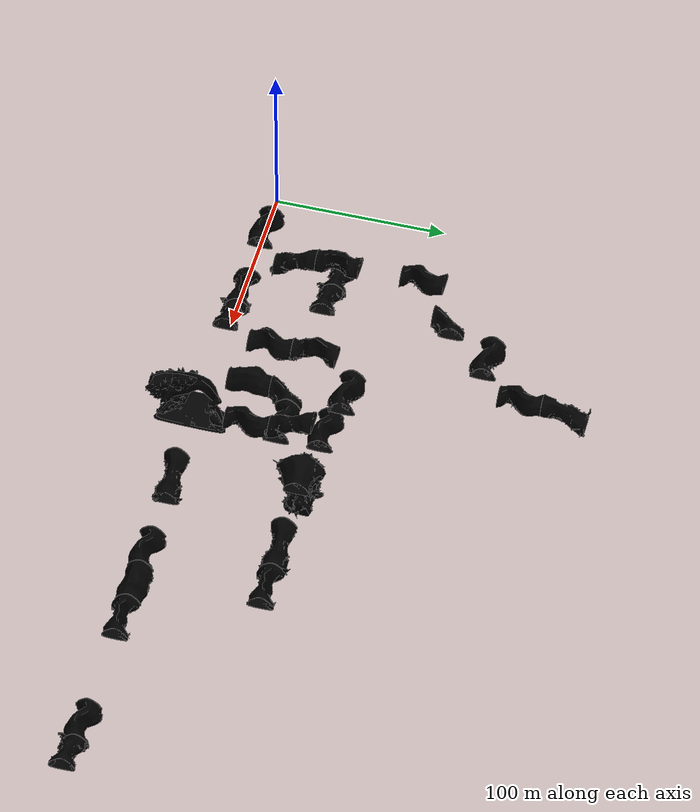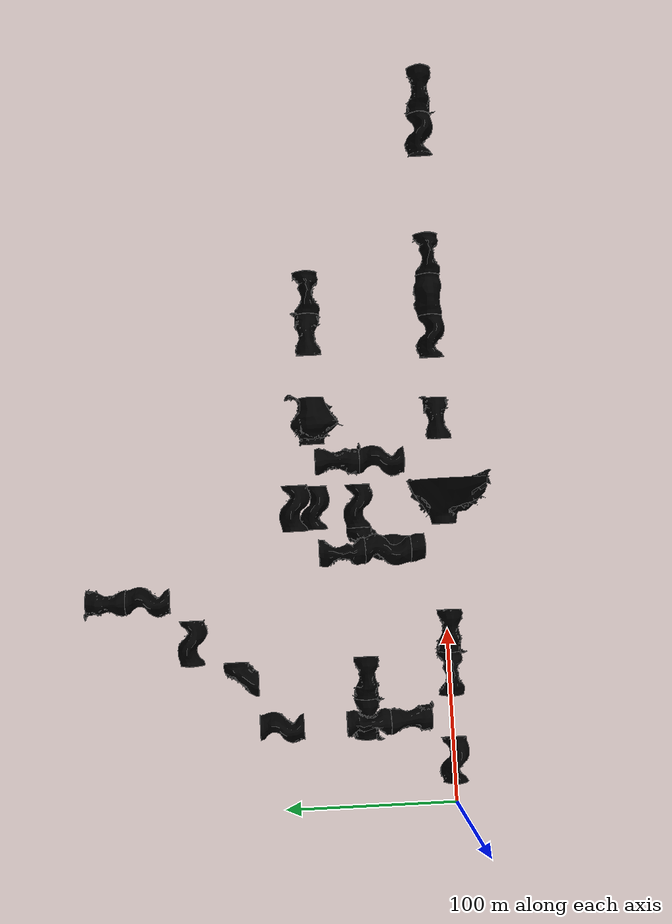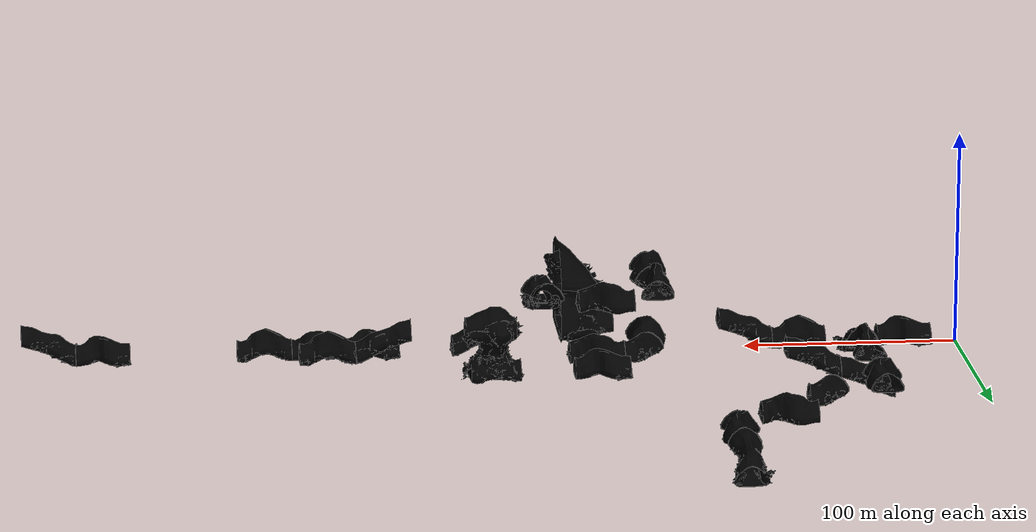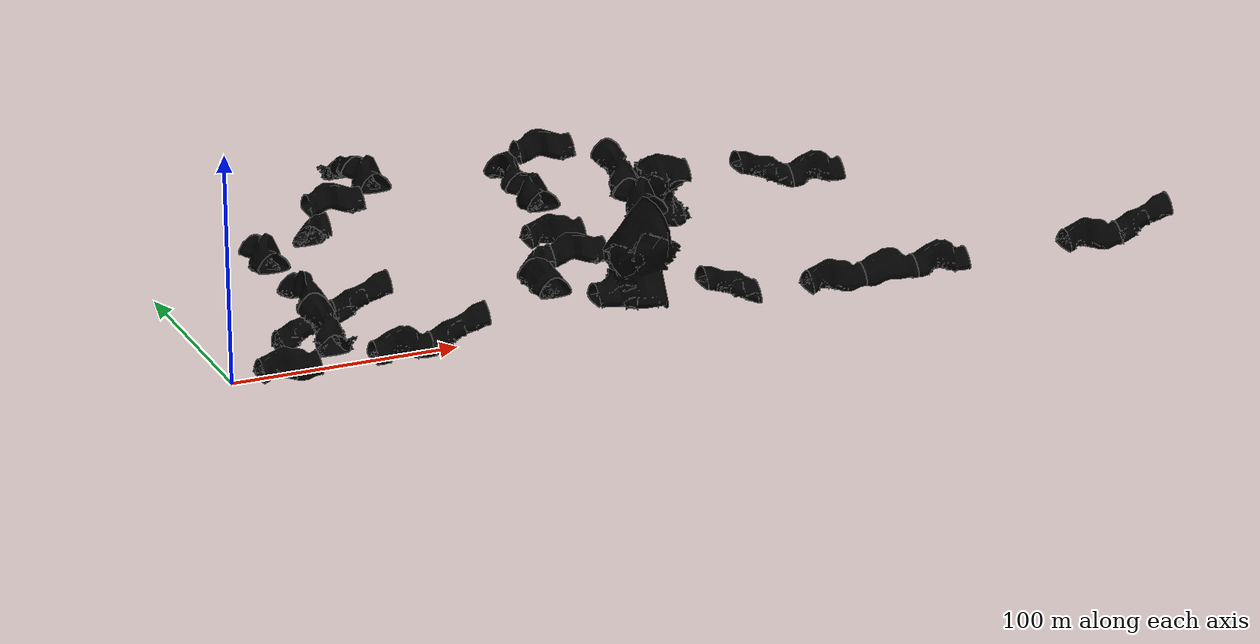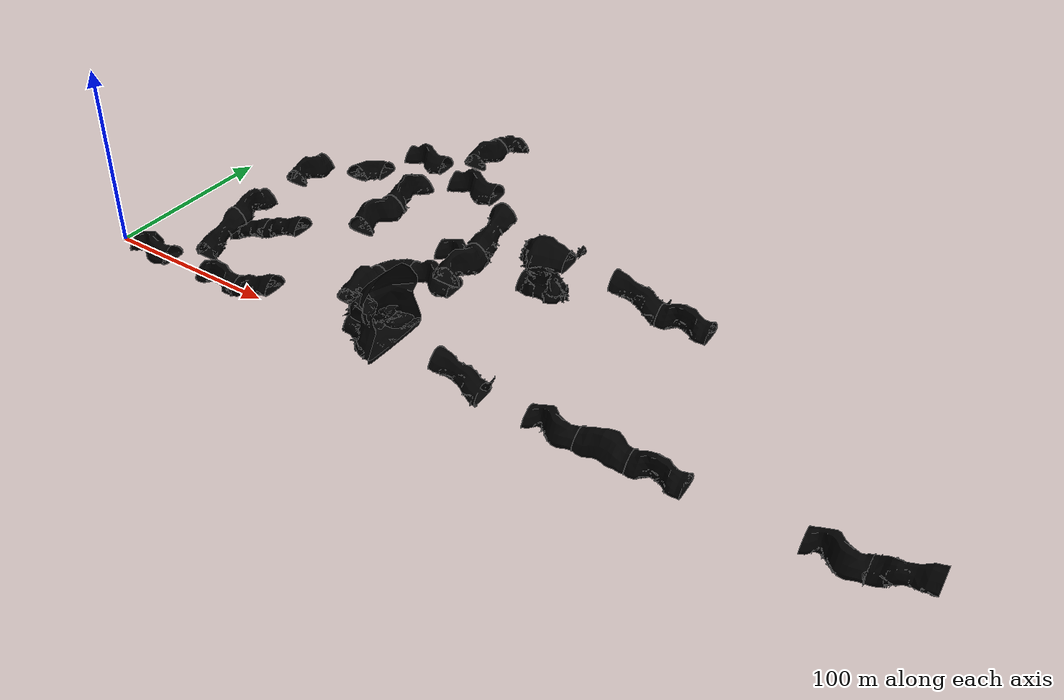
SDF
<sdf version="1.6">
 <world name="cave_circuit_06">
  <physics name="1ms" type="ode">
   <max_step_size>0.004</max_step_size>
   <real_time_factor>1.0</real_time_factor>
  </physics>
  <scene>
   <ambient>0.1 0.1 0.1 1.0</ambient>
   <background>0 0 0 1.0</background>
   <grid>false</grid>
   <origin_visual>false</origin_visual>
  </scene>
  <atmosphere type="adiabatic">
   <temperature>288</temperature>
   <temperature_gradient>0.3</temperature_gradient>
  </atmosphere>
  <model name="performer_detector_rockfall_1">
   <static>true</static>
   <pose>152.895000 42.074100 14.025700 0 0 0</pose>
   <plugin filename="libignition-gazebo-performer-detector-system.so" name="ignition::gazebo::systems::PerformerDetector">
    <topic>/subt_performer_detector</topic>
    <geometry><box><size>25 16 15</size></box></geometry>
   </plugin>
   <plugin name="ignition::gazebo::systems::TriggeredPublisher" filename="libignition-gazebo-triggered-publisher-system.so">
    <input type="ignition.msgs.Pose" topic="/subt_performer_detector">
     <match field="header.data">{
            key: "frame_id"
            value: "performer_detector_rockfall_1"
            }</match>
     <match field="header.data">{
            key: "state"
            value: "0"
            }</match>
    </input>
    <output type="ignition.msgs.Empty" topic="/model/dynamic_rocks_1/breadcrumbs/Rock/deploy"/>
   </plugin>
  </model>
  <model name="performer_detector_rockfall_2">
   <static>true</static>
   <pose>123.259000 119.252000 18.634200 0 0 0</pose>
   <plugin filename="libignition-gazebo-performer-detector-system.so" name="ignition::gazebo::systems::PerformerDetector">
    <topic>/subt_performer_detector</topic>
    <geometry><box><size>16 25 15</size></box></geometry>
   </plugin>
   <plugin name="ignition::gazebo::systems::TriggeredPublisher" filename="libignition-gazebo-triggered-publisher-system.so">
    <input type="ignition.msgs.Pose" topic="/subt_performer_detector">
     <match field="header.data">{
            key: "frame_id"
            value: "performer_detector_rockfall_2"
            }</match>
     <match field="header.data">{
            key: "state"
            value: "1"
            }</match>
    </input>
    <output type="ignition.msgs.Empty" topic="/model/dynamic_rocks_2/breadcrumbs/Rock/deploy"/>
   </plugin>
  </model>
  <model name="performer_detector_rockfall_3">
   <static>true</static>
   <pose>232.034000 -0.300330 9.838950 0 0 0</pose>
   <plugin filename="libignition-gazebo-performer-detector-system.so" name="ignition::gazebo::systems::PerformerDetector">
    <topic>/subt_performer_detector</topic>
    <geometry><box><size>10 25 15</size></box></geometry>
   </plugin>
   <plugin name="ignition::gazebo::systems::TriggeredPublisher" filename="libignition-gazebo-triggered-publisher-system.so">
    <input type="ignition.msgs.Pose" topic="/subt_performer_detector">
     <match field="header.data">{
            key: "frame_id"
            value: "performer_detector_rockfall_3"
            }</match>
     <match field="header.data">{
            key: "state"
            value: "1"
            }</match>
    </input>
    <output type="ignition.msgs.Empty" topic="/model/dynamic_rocks_3/breadcrumbs/Rock/deploy"/>
   </plugin>
  </model>
  <include>
   <uri>https://fuel.ignitionrobotics.org/1.0/OpenRobotics/models/Cave Straight 03 Type B</uri>
   <name>tile_1</name>
   <pose>25 0 0 0 0 -1.5708</pose>
  </include>
  <include>
   <uri>https://fuel.ignitionrobotics.org/1.0/OpenRobotics/models/Cave Straight 02 Lights Type B</uri>
   <name>tile_3</name>
   <pose>75 0 0 0 0 -1.5708</pose>
  </include>
  <include>
   <uri>https://fuel.ignitionrobotics.org/1.0/OpenRobotics/models/Cave Elevation Lights Type B</uri>
   <name>tile_4</name>
   <pose>50 25 0 0 -0 3.14159</pose>
  </include>
  <include>
   <uri>https://fuel.ignitionrobotics.org/1.0/OpenRobotics/models/Cave Elevation Lights Type B</uri>
   <name>tile_5</name>
   <pose>100 0 0 0 -0 1.5708</pose>
  </include>
  <include>
   <uri>https://fuel.ignitionrobotics.org/1.0/OpenRobotics/models/Cave Straight 02 Type B</uri>
   <name>tile_6</name>
   <pose>50 50 10 0 -0 0</pose>
  </include>
  <include>
   <uri>https://fuel.ignitionrobotics.org/1.0/OpenRobotics/models/Cave Straight 03 Type B</uri>
   <name>tile_11</name>
   <pose>50 100 10 0 -0 0</pose>
  </include>
  <include>
   <uri>https://fuel.ignitionrobotics.org/1.0/OpenRobotics/models/Cave Cavern Split 02 Type B</uri>
   <name>tile_12</name>
   <pose>175 0 10 0 -0 0</pose>
  </include>
  <include>
   <uri>https://fuel.ignitionrobotics.org/1.0/OpenRobotics/models/Cave Corner 02 Type B</uri>
   <name>tile_14</name>
   <pose>150 50 10 0 -0 3.14159</pose>
  </include>
  <include>
   <uri>https://fuel.ignitionrobotics.org/1.0/OpenRobotics/models/Cave Elevation Type B</uri>
   <name>tile_17</name>
   <pose>225 0 0 0 0 -1.5708</pose>
  </include>
  <include>
   <uri>https://fuel.ignitionrobotics.org/1.0/OpenRobotics/models/Cave Straight 03 Type B</uri>
   <name>tile_18</name>
   <pose>200 37.5 35 0 -0 0</pose>
  </include>
  <include>
   <uri>https://fuel.ignitionrobotics.org/1.0/OpenRobotics/models/Cave Elevation Type B</uri>
   <name>tile_23</name>
   <pose>200 62.5 35 0 -0 3.14159</pose>
  </include>
  <include>
   <uri>https://fuel.ignitionrobotics.org/1.0/OpenRobotics/models/Cave Elevation Type B</uri>
   <name>tile_26</name>
   <pose>75 50 0 0 -0 1.5708</pose>
  </include>
  <include>
   <uri>https://fuel.ignitionrobotics.org/1.0/OpenRobotics/models/Cave Straight 03 Type B</uri>
   <name>tile_28</name>
   <pose>275 0 0 0 0 -1.5708</pose>
  </include>
  <include>
   <uri>https://fuel.ignitionrobotics.org/1.0/OpenRobotics/models/Cave Straight 03 Type B</uri>
   <name>tile_32</name>
   <pose>175 75 10 0 0 -1.5708</pose>
  </include>
  <include>
   <uri>https://fuel.ignitionrobotics.org/1.0/OpenRobotics/models/Cave Elevation Type B</uri>
   <name>tile_33</name>
   <pose>50 50 -10 0 -0 1.5708</pose>
  </include>
  <include>
   <uri>https://fuel.ignitionrobotics.org/1.0/OpenRobotics/models/Cave Straight 04 Lights Type B</uri>
   <name>tile_35</name>
   <pose>300 0 0 0 0 -1.5708</pose>
  </include>
  <include>
   <uri>https://fuel.ignitionrobotics.org/1.0/OpenRobotics/models/Cave Straight 03 Type B</uri>
   <name>tile_37</name>
   <pose>175 87.5 45 0 -0 1.5708</pose>
  </include>
  <include>
   <uri>https://fuel.ignitionrobotics.org/1.0/OpenRobotics/models/Cave Straight 02 Type B</uri>
   <name>tile_42</name>
   <pose>325 0 0 0 0 -1.5708</pose>
  </include>
  <include>
   <uri>https://fuel.ignitionrobotics.org/1.0/OpenRobotics/models/Cave Straight 03 Type B</uri>
   <name>tile_45</name>
   <pose>125 175 10 0 -0 0</pose>
  </include>
  <include>
   <uri>https://fuel.ignitionrobotics.org/1.0/OpenRobotics/models/Cave Straight 03 Type B</uri>
   <name>tile_46</name>
   <pose>100 150 10 0 -0 1.5708</pose>
  </include>
  <include>
   <uri>https://fuel.ignitionrobotics.org/1.0/OpenRobotics/models/Cave Corner 02 Lights Type B</uri>
   <name>tile_47</name>
   <pose>75 125 10 0 -0 3.14159</pose>
  </include>
  <include>
   <uri>https://fuel.ignitionrobotics.org/1.0/OpenRobotics/models/Cave Vertical Shaft Type B</uri>
   <name>tile_48</name>
   <pose>225 75 10 0 0 -1.5708</pose>
  </include>
  <include>
   <uri>https://fuel.ignitionrobotics.org/1.0/OpenRobotics/models/Cave Straight 02 Type B</uri>
   <name>tile_56</name>
   <pose>150 62.5 45 0 -0 3.14159</pose>
  </include>
  <include>
   <uri>https://fuel.ignitionrobotics.org/1.0/OpenRobotics/models/Cave Elevation Type B</uri>
   <name>tile_57</name>
   <pose>125 200 0 0 -0 0</pose>
  </include>
  <include>
   <uri>https://fuel.ignitionrobotics.org/1.0/OpenRobotics/models/Cave Straight 03 Type B</uri>
   <name>tile_61</name>
   <pose>175 50 10 0 -0 1.5708</pose>
  </include>
  <include>
   <uri>https://fuel.ignitionrobotics.org/1.0/OpenRobotics/models/Cave Straight 03 Type B</uri>
   <name>tile_69</name>
   <pose>150 37.5 45 0 -0 3.14159</pose>
  </include>
  <include>
   <uri>https://fuel.ignitionrobotics.org/1.0/OpenRobotics/models/Cave Elevation Lights Type B</uri>
   <name>tile_72</name>
   <pose>275 75 20 0 0 -1.5708</pose>
  </include>
  <include>
   <uri>https://fuel.ignitionrobotics.org/1.0/OpenRobotics/models/Cave Straight 04 Type B</uri>
   <name>tile_73</name>
   <pose>150 25 10 0 -0 0</pose>
  </include>
  <include>
   <uri>https://fuel.ignitionrobotics.org/1.0/OpenRobotics/models/Cave Straight 03 Type B</uri>
   <name>tile_77</name>
   <pose>400 0 0 0 0 -1.5708</pose>
  </include>
  <include>
   <uri>https://fuel.ignitionrobotics.org/1.0/OpenRobotics/models/Cave Straight 02 Lights Type B</uri>
   <name>tile_85</name>
   <pose>300 75 20 0 0 -1.5708</pose>
  </include>
  <include>
   <uri>https://fuel.ignitionrobotics.org/1.0/OpenRobotics/models/Cave Elevation Type B</uri>
   <name>tile_89</name>
   <pose>425 0 0 0 -0 1.5708</pose>
  </include>
  <plugin name="ignition::gazebo" filename="dummy">
   <level name="level0">
    <ref>tile_1</ref>
    <ref>cave_cap_01</ref>
    <pose>25 105.014 18.6428 0 0 0</pose>
    <geometry><box><size>93.75 339.973 157.286</size></box></geometry>
    <buffer>10</buffer>
   </level>
   <level name="level1">
    <ref>rescue_randy_1</ref>
    <pose>35.5225 105.014 18.6428 0 0 0</pose>
    <geometry><box><size>93.75 339.973 157.286</size></box></geometry>
    <buffer>10</buffer>
   </level>
   <level name="level2">
    <ref>tile_2</ref>
    <ref>tile_4</ref>
    <ref>tile_6</ref>
    <ref>tile_8</ref>
    <ref>tile_11</ref>
    <ref>tile_33</ref>
    <ref>cave_cap_05</ref>
    <pose>50 105.014 18.6428 0 0 0</pose>
    <geometry><box><size>93.75 339.973 157.286</size></box></geometry>
    <buffer>10</buffer>
   </level>
   <level name="level3">
    <ref>helmet_1</ref>
    <pose>50.9806 105.014 18.6428 0 0 0</pose>
    <geometry><box><size>93.75 339.973 157.286</size></box></geometry>
    <buffer>10</buffer>
   </level>
   <level name="level4">
    <ref>phone_1</ref>
    <pose>56.3242 105.014 18.6428 0 0 0</pose>
    <geometry><box><size>93.75 339.973 157.286</size></box></geometry>
    <buffer>10</buffer>
   </level>
   <level name="level5">
    <ref>rope_2</ref>
    <pose>74.5161 105.014 18.6428 0 0 0</pose>
    <geometry><box><size>93.75 339.973 157.286</size></box></geometry>
    <buffer>10</buffer>
   </level>
   <level name="level6">
    <ref>tile_3</ref>
    <ref>tile_26</ref>
    <ref>tile_47</ref>
    <ref>cave_cap_08</ref>
    <ref>cave_cap_09</ref>
    <pose>75 105.014 18.6428 0 0 0</pose>
    <geometry><box><size>93.75 339.973 157.286</size></box></geometry>
    <buffer>10</buffer>
   </level>
   <level name="level7">
    <ref>backpack_4</ref>
    <pose>94.0601 105.014 18.6428 0 0 0</pose>
    <geometry><box><size>93.75 339.973 157.286</size></box></geometry>
    <buffer>10</buffer>
   </level>
   <level name="level8">
    <ref>tile_5</ref>
    <ref>tile_20</ref>
    <ref>tile_31</ref>
    <ref>tile_39</ref>
    <ref>tile_46</ref>
    <ref>cave_cap_02</ref>
    <ref>cave_cap_12</ref>
    <pose>100 105.014 18.6428 0 0 0</pose>
    <geometry><box><size>93.75 339.973 157.286</size></box></geometry>
    <buffer>10</buffer>
   </level>
   <level name="level9">
    <ref>backpack_5</ref>
    <pose>121.832 105.014 18.6428 0 0 0</pose>
    <geometry><box><size>93.75 339.973 157.286</size></box></geometry>
    <buffer>10</buffer>
   </level>
   <level name="level10">
    <ref>tile_7</ref>
    <ref>tile_10</ref>
    <ref>tile_15</ref>
    <ref>tile_19</ref>
    <ref>tile_24</ref>
    <ref>tile_30</ref>
    <ref>tile_38</ref>
    <ref>tile_45</ref>
    <ref>tile_55</ref>
    <ref>tile_57</ref>
    <ref>cave_cap_10</ref>
    <pose>125 105.014 18.6428 0 0 0</pose>
    <geometry><box><size>93.75 339.973 157.286</size></box></geometry>
    <buffer>10</buffer>
   </level>
   <level name="level11">
    <ref>helmet_3</ref>
    <pose>130.208 105.014 18.6428 0 0 0</pose>
    <geometry><box><size>93.75 339.973 157.286</size></box></geometry>
    <buffer>10</buffer>
   </level>
   <level name="level12">
    <ref>helmet_2</ref>
    <pose>133.322 105.014 18.6428 0 0 0</pose>
    <geometry><box><size>93.75 339.973 157.286</size></box></geometry>
    <buffer>10</buffer>
   </level>
   <level name="level13">
    <ref>backpack_2</ref>
    <pose>142.433 105.014 18.6428 0 0 0</pose>
    <geometry><box><size>93.75 339.973 157.286</size></box></geometry>
    <buffer>10</buffer>
   </level>
   <level name="level14">
    <ref>tile_9</ref>
    <ref>tile_14</ref>
    <ref>tile_25</ref>
    <ref>tile_44</ref>
    <ref>tile_56</ref>
    <ref>tile_69</ref>
    <ref>tile_73</ref>
    <ref>tile_81</ref>
    <ref>cave_cap_04</ref>
    <pose>150 105.014 18.6428 0 0 0</pose>
    <geometry><box><size>93.75 339.973 157.286</size></box></geometry>
    <buffer>10</buffer>
   </level>
   <level name="level15">
    <ref>phone_2</ref>
    <pose>165.16 105.014 18.6428 0 0 0</pose>
    <geometry><box><size>93.75 339.973 157.286</size></box></geometry>
    <buffer>10</buffer>
   </level>
   <level name="level16">
    <ref>tile_12</ref>
    <ref>tile_32</ref>
    <ref>tile_37</ref>
    <ref>tile_61</ref>
    <ref>tile_101</ref>
    <pose>175 105.014 18.6428 0 0 0</pose>
    <geometry><box><size>93.75 339.973 157.286</size></box></geometry>
    <buffer>10</buffer>
   </level>
   <level name="level17">
    <ref>backpack_3</ref>
    <pose>175.821 105.014 18.6428 0 0 0</pose>
    <geometry><box><size>93.75 339.973 157.286</size></box></geometry>
    <buffer>10</buffer>
   </level>
   <level name="level18">
    <ref>helmet_4</ref>
    <pose>185.56 105.014 18.6428 0 0 0</pose>
    <geometry><box><size>93.75 339.973 157.286</size></box></geometry>
    <buffer>10</buffer>
   </level>
   <level name="level19">
    <ref>rope_1</ref>
    <pose>192.126 105.014 18.6428 0 0 0</pose>
    <geometry><box><size>93.75 339.973 157.286</size></box></geometry>
    <buffer>10</buffer>
   </level>
   <level name="level20">
    <ref>helmet_5</ref>
    <pose>197.018 105.014 18.6428 0 0 0</pose>
    <geometry><box><size>93.75 339.973 157.286</size></box></geometry>
    <buffer>10</buffer>
   </level>
   <level name="level21">
    <ref>tile_13</ref>
    <ref>tile_18</ref>
    <ref>tile_23</ref>
    <ref>tile_29</ref>
    <ref>tile_36</ref>
    <ref>tile_40</ref>
    <ref>tile_43</ref>
    <ref>tile_49</ref>
    <ref>cave_cap_03</ref>
    <ref>cave_cap_11</ref>
    <pose>200 105.014 18.6428 0 0 0</pose>
    <geometry><box><size>93.75 339.973 157.286</size></box></geometry>
    <buffer>10</buffer>
   </level>
   <level name="level22">
    <ref>rescue_randy_4</ref>
    <pose>200.931 105.014 18.6428 0 0 0</pose>
    <geometry><box><size>93.75 339.973 157.286</size></box></geometry>
    <buffer>10</buffer>
   </level>
   <level name="level23">
    <ref>rope_3</ref>
    <pose>221.841 105.014 18.6428 0 0 0</pose>
    <geometry><box><size>93.75 339.973 157.286</size></box></geometry>
    <buffer>10</buffer>
   </level>
   <level name="level24">
    <ref>tile_17</ref>
    <ref>tile_48</ref>
    <pose>225 105.014 18.6428 0 0 0</pose>
    <geometry><box><size>93.75 339.973 157.286</size></box></geometry>
    <buffer>10</buffer>
   </level>
   <level name="level25">
    <ref>tile_22</ref>
    <ref>tile_60</ref>
    <pose>250 105.014 18.6428 0 0 0</pose>
    <geometry><box><size>93.75 339.973 157.286</size></box></geometry>
    <buffer>10</buffer>
   </level>
   <level name="level26">
    <ref>rescue_randy_3</ref>
    <pose>264.364 105.014 18.6428 0 0 0</pose>
    <geometry><box><size>93.75 339.973 157.286</size></box></geometry>
    <buffer>10</buffer>
   </level>
   <level name="level27">
    <ref>tile_28</ref>
    <ref>tile_72</ref>
    <pose>275 105.014 18.6428 0 0 0</pose>
    <geometry><box><size>93.75 339.973 157.286</size></box></geometry>
    <buffer>10</buffer>
   </level>
   <level name="level28">
    <ref>tile_35</ref>
    <ref>tile_85</ref>
    <pose>300 105.014 18.6428 0 0 0</pose>
    <geometry><box><size>93.75 339.973 157.286</size></box></geometry>
    <buffer>10</buffer>
   </level>
   <level name="level29">
    <ref>rescue_randy_2</ref>
    <pose>312.444 105.014 18.6428 0 0 0</pose>
    <geometry><box><size>93.75 339.973 157.286</size></box></geometry>
    <buffer>10</buffer>
   </level>
   <level name="level30">
    <ref>tile_42</ref>
    <ref>cave_cap_06</ref>
    <pose>325 105.014 18.6428 0 0 0</pose>
    <geometry><box><size>93.75 339.973 157.286</size></box></geometry>
    <buffer>10</buffer>
   </level>
   <level name="level31">
    <ref>tile_52</ref>
    <pose>350 105.014 18.6428 0 0 0</pose>
    <geometry><box><size>93.75 339.973 157.286</size></box></geometry>
    <buffer>10</buffer>
   </level>
   <level name="level32">
    <ref>phone_3</ref>
    <pose>374.93 105.014 18.6428 0 0 0</pose>
    <geometry><box><size>93.75 339.973 157.286</size></box></geometry>
    <buffer>10</buffer>
   </level>
   <level name="level33">
    <ref>tile_65</ref>
    <pose>375 105.014 18.6428 0 0 0</pose>
    <geometry><box><size>93.75 339.973 157.286</size></box></geometry>
    <buffer>10</buffer>
   </level>
   <level name="level34">
    <ref>tile_77</ref>
    <pose>400 105.014 18.6428 0 0 0</pose>
    <geometry><box><size>93.75 339.973 157.286</size></box></geometry>
    <buffer>10</buffer>
   </level>
   <level name="level35">
    <ref>tile_89</ref>
    <pose>425 105.014 18.6428 0 0 0</pose>
    <geometry><box><size>93.75 339.973 157.286</size></box></geometry>
    <buffer>10</buffer>
   </level>
   <level name="level36">
    <ref>backpack_1</ref>
    <pose>438.41 105.014 18.6428 0 0 0</pose>
    <geometry><box><size>93.75 339.973 157.286</size></box></geometry>
    <buffer>10</buffer>
   </level>
   <level name="level37">
    <ref>cave_cap_07</ref>
    <pose>450 105.014 18.6428 0 0 0</pose>
    <geometry><box><size>93.75 339.973 157.286</size></box></geometry>
    <buffer>10</buffer>
   </level>
   <level name="level38">
    <ref>rope_1</ref>
    <pose>237.5 -14.9729 18.6428 0 0 0</pose>
    <geometry><box><size>525 93.75 157.286</size></box></geometry>
    <buffer>10</buffer>
   </level>
   <level name="level39">
    <ref>cave_cap_04</ref>
    <pose>237.5 -12.5 18.6428 0 0 0</pose>
    <geometry><box><size>525 93.75 157.286</size></box></geometry>
    <buffer>10</buffer>
   </level>
   <level name="level40">
    <ref>phone_3</ref>
    <pose>237.5 -7.54941 18.6428 0 0 0</pose>
    <geometry><box><size>525 93.75 157.286</size></box></geometry>
    <buffer>10</buffer>
   </level>
   <level name="level41">
    <ref>rescue_randy_3</ref>
    <pose>237.5 -3.45589 18.6428 0 0 0</pose>
    <geometry><box><size>525 93.75 157.286</size></box></geometry>
    <buffer>10</buffer>
   </level>
   <level name="level42">
    <ref>helmet_1</ref>
    <pose>237.5 -2.7897 18.6428 0 0 0</pose>
    <geometry><box><size>525 93.75 157.286</size></box></geometry>
    <buffer>10</buffer>
   </level>
   <level name="level43">
    <ref>tile_1</ref>
    <ref>tile_2</ref>
    <ref>tile_3</ref>
    <ref>tile_5</ref>
    <ref>tile_7</ref>
    <ref>tile_9</ref>
    <ref>tile_12</ref>
    <ref>tile_13</ref>
    <ref>tile_17</ref>
    <ref>tile_22</ref>
    <ref>tile_28</ref>
    <ref>tile_35</ref>
    <ref>tile_42</ref>
    <ref>tile_52</ref>
    <ref>tile_65</ref>
    <ref>tile_77</ref>
    <ref>tile_89</ref>
    <ref>cave_cap_07</ref>
    <pose>237.5 0 18.6428 0 0 0</pose>
    <geometry><box><size>525 93.75 157.286</size></box></geometry>
    <buffer>10</buffer>
   </level>
   <level name="level44">
    <ref>backpack_1</ref>
    <pose>237.5 0.767153 18.6428 0 0 0</pose>
    <geometry><box><size>525 93.75 157.286</size></box></geometry>
    <buffer>10</buffer>
   </level>
   <level name="level45">
    <ref>tile_81</ref>
    <pose>237.5 12.5 18.6428 0 0 0</pose>
    <geometry><box><size>525 93.75 157.286</size></box></geometry>
    <buffer>10</buffer>
   </level>
   <level name="level46">
    <ref>backpack_2</ref>
    <pose>237.5 12.9861 18.6428 0 0 0</pose>
    <geometry><box><size>525 93.75 157.286</size></box></geometry>
    <buffer>10</buffer>
   </level>
   <level name="level47">
    <ref>helmet_4</ref>
    <pose>237.5 13.4616 18.6428 0 0 0</pose>
    <geometry><box><size>525 93.75 157.286</size></box></geometry>
    <buffer>10</buffer>
   </level>
   <level name="level48">
    <ref>rescue_randy_4</ref>
    <pose>237.5 17.924 18.6428 0 0 0</pose>
    <geometry><box><size>525 93.75 157.286</size></box></geometry>
    <buffer>10</buffer>
   </level>
   <level name="level49">
    <ref>tile_4</ref>
    <ref>tile_10</ref>
    <ref>tile_73</ref>
    <ref>tile_101</ref>
    <ref>cave_cap_03</ref>
    <pose>237.5 25 18.6428 0 0 0</pose>
    <geometry><box><size>525 93.75 157.286</size></box></geometry>
    <buffer>10</buffer>
   </level>
   <level name="level50">
    <ref>tile_18</ref>
    <ref>tile_69</ref>
    <pose>237.5 37.5 18.6428 0 0 0</pose>
    <geometry><box><size>525 93.75 157.286</size></box></geometry>
    <buffer>10</buffer>
   </level>
   <level name="level51">
    <ref>rescue_randy_1</ref>
    <pose>237.5 49.4132 18.6428 0 0 0</pose>
    <geometry><box><size>525 93.75 157.286</size></box></geometry>
    <buffer>10</buffer>
   </level>
   <level name="level52">
    <ref>tile_6</ref>
    <ref>tile_14</ref>
    <ref>tile_15</ref>
    <ref>tile_20</ref>
    <ref>tile_26</ref>
    <ref>tile_33</ref>
    <ref>tile_49</ref>
    <ref>tile_61</ref>
    <ref>cave_cap_01</ref>
    <pose>237.5 50 18.6428 0 0 0</pose>
    <geometry><box><size>525 93.75 157.286</size></box></geometry>
    <buffer>10</buffer>
   </level>
   <level name="level53">
    <ref>phone_2</ref>
    <pose>237.5 52.6357 18.6428 0 0 0</pose>
    <geometry><box><size>525 93.75 157.286</size></box></geometry>
    <buffer>10</buffer>
   </level>
   <level name="level54">
    <ref>tile_23</ref>
    <ref>tile_56</ref>
    <pose>237.5 62.5 18.6428 0 0 0</pose>
    <geometry><box><size>525 93.75 157.286</size></box></geometry>
    <buffer>10</buffer>
   </level>
   <level name="level55">
    <ref>helmet_3</ref>
    <pose>237.5 66.6741 18.6428 0 0 0</pose>
    <geometry><box><size>525 93.75 157.286</size></box></geometry>
    <buffer>10</buffer>
   </level>
   <level name="level56">
    <ref>backpack_3</ref>
    <pose>237.5 69.0323 18.6428 0 0 0</pose>
    <geometry><box><size>525 93.75 157.286</size></box></geometry>
    <buffer>10</buffer>
   </level>
   <level name="level57">
    <ref>tile_8</ref>
    <ref>tile_19</ref>
    <ref>tile_25</ref>
    <ref>tile_32</ref>
    <ref>tile_40</ref>
    <ref>tile_48</ref>
    <ref>tile_60</ref>
    <ref>tile_72</ref>
    <ref>tile_85</ref>
    <ref>cave_cap_06</ref>
    <pose>237.5 75 18.6428 0 0 0</pose>
    <geometry><box><size>525 93.75 157.286</size></box></geometry>
    <buffer>10</buffer>
   </level>
   <level name="level58">
    <ref>rope_3</ref>
    <pose>237.5 76.8336 18.6428 0 0 0</pose>
    <geometry><box><size>525 93.75 157.286</size></box></geometry>
    <buffer>10</buffer>
   </level>
   <level name="level59">
    <ref>rescue_randy_2</ref>
    <pose>237.5 77.8378 18.6428 0 0 0</pose>
    <geometry><box><size>525 93.75 157.286</size></box></geometry>
    <buffer>10</buffer>
   </level>
   <level name="level60">
    <ref>tile_29</ref>
    <ref>tile_37</ref>
    <ref>tile_44</ref>
    <ref>tile_55</ref>
    <ref>cave_cap_12</ref>
    <pose>237.5 87.5 18.6428 0 0 0</pose>
    <geometry><box><size>525 93.75 157.286</size></box></geometry>
    <buffer>10</buffer>
   </level>
   <level name="level61">
    <ref>tile_11</ref>
    <ref>tile_24</ref>
    <ref>tile_31</ref>
    <ref>cave_cap_08</ref>
    <pose>237.5 100 18.6428 0 0 0</pose>
    <geometry><box><size>525 93.75 157.286</size></box></geometry>
    <buffer>10</buffer>
   </level>
   <level name="level62">
    <ref>phone_1</ref>
    <pose>237.5 101.075 18.6428 0 0 0</pose>
    <geometry><box><size>525 93.75 157.286</size></box></geometry>
    <buffer>10</buffer>
   </level>
   <level name="level63">
    <ref>backpack_4</ref>
    <pose>237.5 103.616 18.6428 0 0 0</pose>
    <geometry><box><size>525 93.75 157.286</size></box></geometry>
    <buffer>10</buffer>
   </level>
   <level name="level64">
    <ref>tile_36</ref>
    <pose>237.5 112.5 18.6428 0 0 0</pose>
    <geometry><box><size>525 93.75 157.286</size></box></geometry>
    <buffer>10</buffer>
   </level>
   <level name="level65">
    <ref>helmet_5</ref>
    <pose>237.5 115.371 18.6428 0 0 0</pose>
    <geometry><box><size>525 93.75 157.286</size></box></geometry>
    <buffer>10</buffer>
   </level>
   <level name="level66">
    <ref>rope_2</ref>
    <pose>237.5 116.02 18.6428 0 0 0</pose>
    <geometry><box><size>525 93.75 157.286</size></box></geometry>
    <buffer>10</buffer>
   </level>
   <level name="level67">
    <ref>helmet_2</ref>
    <pose>237.5 124.379 18.6428 0 0 0</pose>
    <geometry><box><size>525 93.75 157.286</size></box></geometry>
    <buffer>10</buffer>
   </level>
   <level name="level68">
    <ref>tile_30</ref>
    <ref>tile_39</ref>
    <ref>tile_47</ref>
    <ref>cave_cap_05</ref>
    <pose>237.5 125 18.6428 0 0 0</pose>
    <geometry><box><size>525 93.75 157.286</size></box></geometry>
    <buffer>10</buffer>
   </level>
   <level name="level69">
    <ref>tile_43</ref>
    <pose>237.5 137.5 18.6428 0 0 0</pose>
    <geometry><box><size>525 93.75 157.286</size></box></geometry>
    <buffer>10</buffer>
   </level>
   <level name="level70">
    <ref>tile_38</ref>
    <ref>tile_46</ref>
    <ref>cave_cap_02</ref>
    <ref>cave_cap_09</ref>
    <pose>237.5 150 18.6428 0 0 0</pose>
    <geometry><box><size>525 93.75 157.286</size></box></geometry>
    <buffer>10</buffer>
   </level>
   <level name="level71">
    <ref>cave_cap_11</ref>
    <pose>237.5 162.5 18.6428 0 0 0</pose>
    <geometry><box><size>525 93.75 157.286</size></box></geometry>
    <buffer>10</buffer>
   </level>
   <level name="level72">
    <ref>tile_45</ref>
    <pose>237.5 175 18.6428 0 0 0</pose>
    <geometry><box><size>525 93.75 157.286</size></box></geometry>
    <buffer>10</buffer>
   </level>
   <level name="level73">
    <ref>tile_57</ref>
    <pose>237.5 200 18.6428 0 0 0</pose>
    <geometry><box><size>525 93.75 157.286</size></box></geometry>
    <buffer>10</buffer>
   </level>
   <level name="level74">
    <ref>backpack_5</ref>
    <pose>237.5 214.72 18.6428 0 0 0</pose>
    <geometry><box><size>525 93.75 157.286</size></box></geometry>
    <buffer>10</buffer>
   </level>
   <level name="level75">
    <ref>cave_cap_10</ref>
    <pose>237.5 225 18.6428 0 0 0</pose>
    <geometry><box><size>525 93.75 157.286</size></box></geometry>
    <buffer>10</buffer>
   </level>
  </plugin>
 </world>
</sdf>

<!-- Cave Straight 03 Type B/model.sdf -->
<sdf version="1.6">
  <model name="Cave Straight 03 Type B">
    <static>true</static>
    <link name="base_link">
      <collision name="collision">
        <pose>0 0 0 0 0 0</pose>
        <geometry>
          <mesh>
            <uri>model://Cave Straight 03 Type B/meshes/cavestraight03.dae</uri>
            <scale>1.005 1.005 1.0</scale>
          </mesh>
        </geometry>
      </collision>
      <visual name="StriatedRock_visual">
        <geometry>
          <mesh>
            <uri>model://Cave Straight 03 Type B/meshes/cavestraight03.dae</uri>
            <submesh>
              <name>StriatedRock</name>
              <center>false</center>
            </submesh>
            <scale>1.005 1.005 1.0</scale>
          </mesh>
        </geometry>
        <material>
          <diffuse>0 0 0 1</diffuse>
          <specular>0 0 0 1</specular>
          <pbr>
            <metal>
              <albedo_map>model://Cave Straight 03 Type B/materials/textures/StriatedRock_Albedo.png</albedo_map>
              <normal_map>model://Cave Straight 03 Type B/materials/textures/StriatedRock_Normal.png</normal_map>
              <roughness_map>model://Cave Straight 03 Type B/materials/textures/StriatedRock_Roughness.png</roughness_map>
            </metal>
          </pbr>

          <script>
            <uri>model://Cave Straight 03 Type B/materials/scripts/</uri>
            <uri>model://Cave Straight 03 Type B/materials/textures/</uri>
            <name>CaveTile/StriatedRock_Diffuse</name>
          </script>
        </material>
      </visual>
      <visual name="RockPile_visual">
        <geometry>
          <mesh>
            <uri>model://Cave Straight 03 Type B/meshes/cavestraight03.dae</uri>
            <submesh>
              <name>RockPile</name>
              <center>false</center>
            </submesh>
            <scale>1.005 1.005 1.0</scale>
          </mesh>
        </geometry>
        <material>
          <diffuse>0 0 0 1</diffuse>
          <specular>0 0 0 1</specular>
          <pbr>
            <metal>
              <albedo_map>model://Cave Straight 03 Type B/materials/textures/RockPile_Albedo.png</albedo_map>
              <normal_map>model://Cave Straight 03 Type B/materials/textures/RockPile_Normal.png</normal_map>
              <roughness_map>model://Cave Straight 03 Type B/materials/textures/RockPile_Roughness.png</roughness_map>
            </metal>
          </pbr>

          <script>
            <uri>model://Cave Straight 03 Type B/materials/scripts/</uri>
            <uri>model://Cave Straight 03 Type B/materials/textures/</uri>
            <name>CaveTile/RockPile_Diffuse</name>
          </script>
        </material>
      </visual>
      <visual name="CaveWall_visual">
        <geometry>
          <mesh>
            <uri>model://Cave Straight 03 Type B/meshes/cavestraight03.dae</uri>
            <submesh>
              <name>CaveWall</name>
              <center>false</center>
            </submesh>
            <scale>1.005 1.005 1.0</scale>
          </mesh>
        </geometry>
        <material>
          <diffuse>0 0 0 1</diffuse>
          <specular>0 0 0 1</specular>
          <pbr>
            <metal>
              <albedo_map>model://Cave Straight 03 Type B/materials/textures/CaveWall_Albedo.png</albedo_map>
              <normal_map>model://Cave Straight 03 Type B/materials/textures/CaveWall_Normal.png</normal_map>
              <roughness_map>model://Cave Straight 03 Type B/materials/textures/CaveWall_Roughness.png</roughness_map>
            </metal>
          </pbr>

          <script>
            <uri>model://Cave Straight 03 Type B/materials/scripts/</uri>
            <uri>model://Cave Straight 03 Type B/materials/textures/</uri>
            <name>CaveTile/CaveWall_Diffuse</name>
          </script>
        </material>
      </visual>
    </link>
  </model>
</sdf>

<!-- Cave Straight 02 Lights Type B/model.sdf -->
<sdf version="1.6">
  <model name="Cave Straight 02 Lights Type B">
    <include>
      <name>cave_straight_02</name>
      <uri>model://Cave Straight 02 Type B</uri>
    </include>
    <static>true</static>
    <link name="lights">
      <light name="spot_light1" type="spot">
        <pose>0 5.0 3.5 0 0 0</pose>
        <diffuse>0 0 0 1</diffuse>
        <specular>0 0 0 1</specular>
        <attenuation>
          <range>20</range>
          <linear>0.2</linear>
          <constant>0.5</constant>
          <quadratic>0.02</quadratic>
        </attenuation>
        <spot>
          <inner_angle>2.0</inner_angle>
          <outer_angle>3.1</outer_angle>
          <falloff>1.0</falloff>
        </spot>
        <cast_shadows>false</cast_shadows>
      </light>

      <light name="spot_light2" type="spot">
        <pose>0 -5.5 4.5 0 0 0</pose>
        <diffuse>0 0 0 1</diffuse>
        <specular>0 0 0 1</specular>
        <attenuation>
          <range>20</range>
          <linear>0.2</linear>
          <constant>0.5</constant>
          <quadratic>0.02</quadratic>
        </attenuation>
        <spot>
          <inner_angle>2.0</inner_angle>
          <outer_angle>3.1</outer_angle>
          <falloff>1.0</falloff>
        </spot>
        <cast_shadows>false</cast_shadows>
      </light>
    </link>
  </model>
</sdf>

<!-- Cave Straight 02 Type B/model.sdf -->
<sdf version="1.6">
  <model name="Cave Straight 02 Type B">
    <static>true</static>
    <link name="base_link">
      <collision name="collision">
        <pose>0 0 0 0 0 0</pose>
        <geometry>
          <mesh>
            <uri>model://Cave Straight 02 Type B/meshes/cavestraight02.dae</uri>
            <scale>1.005 1.005 1.0</scale>
          </mesh>
        </geometry>
      </collision>
      <visual name="StriatedRock_visual">
        <geometry>
          <mesh>
            <uri>model://Cave Straight 02 Type B/meshes/cavestraight02.dae</uri>
            <scale>1.005 1.005 1.0</scale>
            <submesh>
              <name>StriatedRock</name>
              <center>false</center>
            </submesh>
          </mesh>
        </geometry>
        <material>
          <diffuse>0 0 0 1</diffuse>
          <specular>0 0 0 1</specular>
          <pbr>
            <metal>
              <albedo_map>model://Cave Straight 02 Type B/materials/textures/StriatedRock_Albedo.png</albedo_map>
              <normal_map>model://Cave Straight 02 Type B/materials/textures/StriatedRock_Normal.png</normal_map>
              <roughness_map>model://Cave Straight 02 Type B/materials/textures/StriatedRock_Roughness.png</roughness_map>
            </metal>
          </pbr>

          <script>
            <uri>model://Cave Straight 02 Type B/materials/scripts/</uri>
            <uri>model://Cave Straight 02 Type B/materials/textures/</uri>
            <name>CaveTile/StriatedRock_Diffuse</name>
          </script>
        </material>
      </visual>
      <visual name="RockPile_visual">
        <geometry>
          <mesh>
            <uri>model://Cave Straight 02 Type B/meshes/cavestraight02.dae</uri>
            <scale>1.005 1.005 1.0</scale>
            <submesh>
              <name>RockPile</name>
              <center>false</center>
            </submesh>
          </mesh>
        </geometry>
        <material>
          <diffuse>0 0 0 1</diffuse>
          <specular>0 0 0 1</specular>
          <pbr>
            <metal>
              <albedo_map>model://Cave Straight 02 Type B/materials/textures/RockPile_Albedo.png</albedo_map>
              <normal_map>model://Cave Straight 02 Type B/materials/textures/RockPile_Normal.png</normal_map>
              <roughness_map>model://Cave Straight 02 Type B/materials/textures/RockPile_Roughness.png</roughness_map>
            </metal>
          </pbr>

          <script>
            <uri>model://Cave Straight 02 Type B/materials/scripts/</uri>
            <uri>model://Cave Straight 02 Type B/materials/textures/</uri>
            <name>CaveTile/RockPile_Diffuse</name>
          </script>
        </material>
      </visual>
      <visual name="CaveWall_visual">
        <geometry>
          <mesh>
            <uri>model://Cave Straight 02 Type B/meshes/cavestraight02.dae</uri>
            <scale>1.005 1.005 1.0</scale>
            <submesh>
              <name>CaveWall</name>
              <center>false</center>
            </submesh>
          </mesh>
        </geometry>
        <material>
          <diffuse>0 0 0 1</diffuse>
          <specular>0 0 0 1</specular>
          <pbr>
            <metal>
              <albedo_map>model://Cave Straight 02 Type B/materials/textures/CaveWall_Albedo.png</albedo_map>
              <normal_map>model://Cave Straight 02 Type B/materials/textures/CaveWall_Normal.png</normal_map>
              <roughness_map>model://Cave Straight 02 Type B/materials/textures/CaveWall_Roughness.png</roughness_map>
            </metal>
          </pbr>

          <script>
            <uri>model://Cave Straight 02 Type B/materials/scripts/</uri>
            <uri>model://Cave Straight 02 Type B/materials/textures/</uri>
            <name>CaveTile/CaveWall_Diffuse</name>
          </script>
        </material>
      </visual>
    </link>
  </model>
</sdf>

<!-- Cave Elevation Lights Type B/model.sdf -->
<sdf version="1.6">
  <model name="Cave Elevation Lights Type B">
    <static>true</static>
    <include>
      <name>cave_elevation</name>
      <uri>model://Cave Elevation Type B</uri>
    </include>

    <link name="light1">
      <light name="spot_light1" type="spot">
        <pose>0 -8 17.5 0 0 0</pose>
        <diffuse>0 0 0 1</diffuse>
        <specular>0 0 0 1</specular>
        <attenuation>
          <range>20</range>
          <linear>0.2</linear>
          <constant>1.0</constant>
          <quadratic>0.01</quadratic>
        </attenuation>
        <spot>
          <inner_angle>2.0</inner_angle>
          <outer_angle>3.1</outer_angle>
          <falloff>1.2</falloff>
        </spot>
        <cast_shadows>false</cast_shadows>
      </light>

      <light name="spot_light2" type="spot">
        <pose>0 2 13.5 0 0 0</pose>
        <diffuse>0 0 0 1</diffuse>
        <specular>0 0 0 1</specular>
        <attenuation>
          <range>20</range>
          <linear>0.2</linear>
          <constant>1.0</constant>
          <quadratic>0.01</quadratic>
        </attenuation>
        <spot>
          <inner_angle>2.0</inner_angle>
          <outer_angle>3.1</outer_angle>
          <falloff>1.2</falloff>
        </spot>
        <cast_shadows>false</cast_shadows>
      </light>

      <light name="spot_light3" type="spot">
        <pose>0 12 9 0 0 0</pose>
        <diffuse>0 0 0 1</diffuse>
        <specular>0 0 0 1</specular>
        <attenuation>
          <range>20</range>
          <linear>0.2</linear>
          <constant>1.0</constant>
          <quadratic>0.01</quadratic>
        </attenuation>
        <spot>
          <inner_angle>2.0</inner_angle>
          <outer_angle>3.1</outer_angle>
          <falloff>1.2</falloff>
        </spot>
        <cast_shadows>false</cast_shadows>
      </light>
    </link>
  </model>
</sdf>

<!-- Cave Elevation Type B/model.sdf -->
<sdf version="1.6">
  <model name="Cave Elevation Type B">
    <static>true</static>
    <link name="base_link">
      <collision name="collision">
        <pose>0 0 0 0 0 0</pose>
        <geometry>
          <mesh>
            <uri>model://Cave Elevation Type B/meshes/caveelevation.dae</uri>
            <scale>1.0 1.0 1.0</scale>
          </mesh>
        </geometry>
      </collision>
      <visual name="CaveWall_visual">
        <geometry>
          <mesh>
            <uri>model://Cave Elevation Type B/meshes/caveelevation.dae</uri>
            <submesh>
              <name>CaveWall</name>
              <center>false</center>
            </submesh>
          </mesh>
        </geometry>
        <material>
          <diffuse>0 0 0 1</diffuse>
          <specular>0 0 0 1</specular>
          <pbr>
            <metal>
              <albedo_map>model://Cave Elevation Type B/materials/textures/CaveWall_Albedo.png</albedo_map>
              <normal_map>model://Cave Elevation Type B/materials/textures/CaveWall_Normal.png</normal_map>
              <roughness_map>model://Cave Elevation Type B/materials/textures/CaveWall_Roughness.png</roughness_map>
            </metal>
          </pbr>

          <script>
            <uri>model://Cave Elevation Type B/materials/scripts/</uri>
            <uri>model://Cave Elevation Type B/materials/textures/</uri>
            <name>CaveTile/CaveWall_Diffuse</name>
          </script>
        </material>
      </visual>
      <visual name="RockPile_visual">
        <geometry>
          <mesh>
            <uri>model://Cave Elevation Type B/meshes/caveelevation.dae</uri>
            <submesh>
              <name>RockPile</name>
              <center>false</center>
            </submesh>
          </mesh>
        </geometry>
        <material>
          <diffuse>0 0 0 1</diffuse>
          <specular>0 0 0 1</specular>
          <pbr>
            <metal>
              <albedo_map>model://Cave Elevation Type B/materials/textures/RockPile_Albedo.png</albedo_map>
              <normal_map>model://Cave Elevation Type B/materials/textures/RockPile_Normal.png</normal_map>
              <roughness_map>model://Cave Elevation Type B/materials/textures/RockPile_Roughness.png</roughness_map>
            </metal>
          </pbr>

          <script>
            <uri>model://Cave Elevation Type B/materials/scripts/</uri>
            <uri>model://Cave Elevation Type B/materials/textures/</uri>
            <name>CaveTile/RockPile_Diffuse</name>
          </script>
        </material>
      </visual>
      <visual name="StriatedRock_visual">
        <geometry>
          <mesh>
            <uri>model://Cave Elevation Type B/meshes/caveelevation.dae</uri>
            <submesh>
              <name>StriatedRock</name>
              <center>false</center>
            </submesh>
          </mesh>
        </geometry>
        <material>
          <diffuse>0 0 0 1</diffuse>
          <specular>0 0 0 1</specular>
          <pbr>
            <metal>
              <albedo_map>model://Cave Elevation Type B/materials/textures/StriatedRock_Albedo.png</albedo_map>
              <normal_map>model://Cave Elevation Type B/materials/textures/StriatedRock_Normal.png</normal_map>
              <roughness_map>model://Cave Elevation Type B/materials/textures/StriatedRock_Roughness.png</roughness_map>
            </metal>
          </pbr>

          <script>
            <uri>model://Cave Elevation Type B/materials/scripts/</uri>
            <uri>model://Cave Elevation Type B/materials/textures/</uri>
            <name>CaveTile/StriatedRock_Diffuse</name>
          </script>
        </material>
      </visual>
    </link>

    <plugin filename="libignition-gazebo-performer-detector-system.so" name="ignition::gazebo::systems::PerformerDetector">
      <topic>/subt_performer_detector</topic>
      <pose>0 0 10 0 0 0</pose>
      <geometry>
        <box>
          <size>20 30 20</size>
        </box>
      </geometry>
      <header_data>
        <key>type</key>
        <value>elevation</value>
      </header_data>
    </plugin>
  </model>
</sdf>

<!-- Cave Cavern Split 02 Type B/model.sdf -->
<sdf version="1.6">
  <model name="Cave Cavern Split 02 Type B">
    <static>true</static>
    <link name="base_link">
      <collision name="collision">
        <pose>0 0 0 0 0 0</pose>
        <geometry>
          <mesh>
            <uri>model://cave_Cave Cavern Split 02 Type B/meshes/cavernsplit02.dae</uri>
            <scale>1.0 1.0 1.0</scale>
          </mesh>
        </geometry>
      </collision>
      <visual name="StriatedRock_visual">
        <geometry>
          <mesh>
            <uri>model://cave_Cave Cavern Split 02 Type B/meshes/cavernsplit02.dae</uri>
            <submesh>
              <name>StriatedRock</name>
              <center>false</center>
            </submesh>
          </mesh>
        </geometry>
        <material>
          <diffuse>0 0 0 1</diffuse>
          <specular>0 0 0 1</specular>
          <pbr>
            <metal>
              <albedo_map>model://cave_Cave Cavern Split 02 Type B/materials/textures/StriatedRock_Albedo.png</albedo_map>
              <normal_map>model://cave_Cave Cavern Split 02 Type B/materials/textures/StriatedRock_Normal.png</normal_map>
              <roughness_map>model://cave_Cave Cavern Split 02 Type B/materials/textures/StriatedRock_Roughness.png</roughness_map>
            </metal>
          </pbr>

          <script>
            <uri>model://cave_Cave Cavern Split 02 Type B/materials/scripts/</uri>
            <uri>model://cave_Cave Cavern Split 02 Type B/materials/textures/</uri>
            <name>CaveTile/StriatedRock_Diffuse</name>
          </script>
        </material>
      </visual>
      <visual name="RockPile_visual">
        <geometry>
          <mesh>
            <uri>model://cave_Cave Cavern Split 02 Type B/meshes/cavernsplit02.dae</uri>
            <submesh>
              <name>RockPile</name>
              <center>false</center>
            </submesh>
          </mesh>
        </geometry>
        <material>
          <diffuse>0 0 0 1</diffuse>
          <specular>0 0 0 1</specular>
          <pbr>
            <metal>
              <albedo_map>model://cave_Cave Cavern Split 02 Type B/materials/textures/RockPile_Albedo.png</albedo_map>
              <normal_map>model://cave_Cave Cavern Split 02 Type B/materials/textures/RockPile_Normal.png</normal_map>
              <roughness_map>model://cave_Cave Cavern Split 02 Type B/materials/textures/RockPile_Roughness.png</roughness_map>
            </metal>
          </pbr>

          <script>
            <uri>model://cave_Cave Cavern Split 02 Type B/materials/scripts/</uri>
            <uri>model://cave_Cave Cavern Split 02 Type B/materials/textures/</uri>
            <name>CaveTile/RockPile_Diffuse</name>
          </script>
        </material>
      </visual>
      <visual name="CaveWall_visual">
        <geometry>
          <mesh>
            <uri>model://cave_Cave Cavern Split 02 Type B/meshes/cavernsplit02.dae</uri>
            <submesh>
              <name>CaveWall_ncl1_1</name>
              <center>false</center>
            </submesh>
          </mesh>
        </geometry>
        <material>
          <diffuse>0 0 0 1</diffuse>
          <specular>0 0 0 1</specular>
          <pbr>
            <metal>
              <albedo_map>model://cave_Cave Cavern Split 02 Type B/materials/textures/CaveWall_Albedo.png</albedo_map>
              <normal_map>model://cave_Cave Cavern Split 02 Type B/materials/textures/CaveWall_Normal.png</normal_map>
              <roughness_map>model://cave_Cave Cavern Split 02 Type B/materials/textures/CaveWall_Roughness.png</roughness_map>
            </metal>
          </pbr>

          <script>
            <uri>model://cave_Cave Cavern Split 02 Type B/materials/scripts/</uri>
            <uri>model://cave_Cave Cavern Split 02 Type B/materials/textures/</uri>
            <name>CaveTile/CaveWall_Diffuse</name>
          </script>
        </material>
      </visual>
    </link>
  </model>
</sdf>

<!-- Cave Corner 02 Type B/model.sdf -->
<sdf version="1.6">
  <model name="Cave Corner 02 Type B">
    <static>true</static>
    <link name="base_link">
      <collision name="collision">
        <pose>0 0 0 0 0 0</pose>
        <geometry>
          <mesh>
            <uri>model://cave_corner_02/meshes/cavecorner02.dae</uri>
            <scale>1.005 1.005 1.0</scale>
          </mesh>
        </geometry>
      </collision>
      <visual name="CaveWall_visual">
        <geometry>
          <mesh>
            <uri>model://cave_corner_02/meshes/cavecorner02.dae</uri>
            <submesh>
              <name>CaveWall</name>
              <center>false</center>
            </submesh>
            <scale>1.005 1.005 1.0</scale>
          </mesh>
        </geometry>
        <material>
          <diffuse>0 0 0 1</diffuse>
          <specular>0 0 0 1</specular>
          <pbr>
            <metal>
              <albedo_map>model://cave_corner_02/materials/textures/CaveWall_Albedo.png</albedo_map>
              <normal_map>model://cave_corner_02/materials/textures/CaveWall_Normal.png</normal_map>
              <roughness_map>model://cave_corner_02/materials/textures/CaveWall_Roughness.png</roughness_map>
            </metal>
          </pbr>

          <script>
            <uri>model://cave_corner_02/materials/scripts/</uri>
            <uri>model://cave_corner_02/materials/textures/</uri>
            <name>CaveTile/CaveWall_Diffuse</name>
          </script>
        </material>
      </visual>
      <visual name="StriatedRock_visual">
        <geometry>
          <mesh>
            <uri>model://cave_corner_02/meshes/cavecorner02.dae</uri>
            <submesh>
              <name>StriatedRock</name>
              <center>false</center>
            </submesh>
            <scale>1.005 1.005 1.0</scale>
          </mesh>
        </geometry>
        <material>
          <diffuse>0 0 0 1</diffuse>
          <specular>0 0 0 1</specular>
          <pbr>
            <metal>
              <albedo_map>model://cave_corner_02/materials/textures/StriatedRock_Albedo.png</albedo_map>
              <normal_map>model://cave_corner_02/materials/textures/StriatedRock_Normal.png</normal_map>
              <roughness_map>model://cave_corner_02/materials/textures/StriatedRock_Roughness.png</roughness_map>
            </metal>
          </pbr>

          <script>
            <uri>model://cave_corner_02/materials/scripts/</uri>
            <uri>model://cave_corner_02/materials/textures/</uri>
            <name>CaveTile/StriatedRock_Diffuse</name>
          </script>
        </material>
      </visual>
      <visual name="RockPile_visual">
        <geometry>
          <mesh>
            <uri>model://cave_corner_02/meshes/cavecorner02.dae</uri>
            <submesh>
              <name>RockPile</name>
              <center>false</center>
            </submesh>
            <scale>1.005 1.005 1.0</scale>
          </mesh>
        </geometry>
        <material>
          <diffuse>0 0 0 1</diffuse>
          <specular>0 0 0 1</specular>
          <pbr>
            <metal>
              <albedo_map>model://cave_corner_02/materials/textures/RockPile_Albedo.png</albedo_map>
              <normal_map>model://cave_corner_02/materials/textures/RockPile_Normal.png</normal_map>
              <roughness_map>model://cave_corner_02/materials/textures/RockPile_Roughness.png</roughness_map>
            </metal>
          </pbr>

          <script>
            <uri>model://cave_corner_02/materials/scripts/</uri>
            <uri>model://cave_corner_02/materials/textures/</uri>
            <name>CaveTile/RockPile_Diffuse</name>
          </script>
        </material>
      </visual>
    </link>
  </model>
</sdf>

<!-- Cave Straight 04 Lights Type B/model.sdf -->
<sdf version="1.6">
  <model name="Cave Straight 04 Lights Type B">
    <include>
      <name>cave_straight_04</name>
      <uri>model://Cave Straight 04 Type B</uri>
    </include>
    <static>true</static>
    <link name="lights">
      <light name="spot_light1" type="spot">
        <pose>0 8 8.0 0 0 0</pose>
        <diffuse>0 0 0 1</diffuse>
        <specular>0 0 0 1</specular>
        <attenuation>
          <range>20</range>
          <linear>0.2</linear>
          <constant>0.3</constant>
          <quadratic>0.01</quadratic>
        </attenuation>
        <spot>
          <inner_angle>2.0</inner_angle>
          <outer_angle>3.1</outer_angle>
          <falloff>0.6</falloff>
        </spot>
        <cast_shadows>false</cast_shadows>
      </light>

      <light name="spot_light2" type="spot">
        <pose>0 -6.0 4.5 0 0 0</pose>
        <diffuse>0 0 0 1</diffuse>
        <specular>0 0 0 1</specular>
        <attenuation>
          <range>20</range>
          <linear>0.2</linear>
          <constant>0.3</constant>
          <quadratic>0.01</quadratic>
        </attenuation>
        <spot>
          <inner_angle>2.0</inner_angle>
          <outer_angle>3.1</outer_angle>
          <falloff>0.6</falloff>
        </spot>
        <cast_shadows>false</cast_shadows>
      </light>
    </link>
  </model>
</sdf>

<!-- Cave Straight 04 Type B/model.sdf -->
<sdf version="1.6">
  <model name="Cave Straight 04 Type B">
    <static>true</static>
    <link name="base_link">
      <collision name="collision">
        <pose>0 0 0 0 0 0</pose>
        <geometry>
          <mesh>
            <uri>model://Cave Straight 04 Type B/meshes/cavestraight04.dae</uri>
            <scale>1.0 1.0 1.0</scale>
          </mesh>
        </geometry>
      </collision>
      <visual name="StriatedRock_visual">
        <geometry>
          <mesh>
            <uri>model://Cave Straight 04 Type B/meshes/cavestraight04.dae</uri>
            <submesh>
              <name>StriatedRock</name>
              <center>false</center>
            </submesh>
          </mesh>
        </geometry>
        <material>
          <diffuse>0 0 0 1</diffuse>
          <specular>0 0 0 1</specular>
          <pbr>
            <metal>
              <albedo_map>model://Cave Straight 04 Type B/materials/textures/StriatedRock_Albedo.png</albedo_map>
              <normal_map>model://Cave Straight 04 Type B/materials/textures/StriatedRock_Normal.png</normal_map>
              <roughness_map>model://Cave Straight 04 Type B/materials/textures/StriatedRock_Roughness.png</roughness_map>
            </metal>
          </pbr>

          <script>
            <uri>model://Cave Straight 04 Type B/materials/scripts/</uri>
            <uri>model://Cave Straight 04 Type B/materials/textures/</uri>
            <name>CaveTile/StriatedRock_Diffuse</name>
          </script>
        </material>
      </visual>
      <visual name="RockPile_visual">
        <geometry>
          <mesh>
            <uri>model://Cave Straight 04 Type B/meshes/cavestraight04.dae</uri>
            <submesh>
              <name>RockPile</name>
              <center>false</center>
            </submesh>
          </mesh>
        </geometry>
        <material>
          <diffuse>0 0 0 1</diffuse>
          <specular>0 0 0 1</specular>
          <pbr>
            <metal>
              <albedo_map>model://Cave Straight 04 Type B/materials/textures/RockPile_Albedo.png</albedo_map>
              <normal_map>model://Cave Straight 04 Type B/materials/textures/RockPile_Normal.png</normal_map>
              <roughness_map>model://Cave Straight 04 Type B/materials/textures/RockPile_Roughness.png</roughness_map>
            </metal>
          </pbr>

          <script>
            <uri>model://Cave Straight 04 Type B/materials/scripts/</uri>
            <uri>model://Cave Straight 04 Type B/materials/textures/</uri>
            <name>CaveTile/RockPile_Diffuse</name>
          </script>
        </material>
      </visual>
      <visual name="CaveWall_visual">
        <geometry>
          <mesh>
            <uri>model://Cave Straight 04 Type B/meshes/cavestraight04.dae</uri>
            <submesh>
              <name>CaveWall</name>
              <center>false</center>
            </submesh>
          </mesh>
        </geometry>
        <material>
          <diffuse>0 0 0 1</diffuse>
          <specular>0 0 0 1</specular>
          <pbr>
            <metal>
              <albedo_map>model://Cave Straight 04 Type B/materials/textures/CaveWall_Albedo.png</albedo_map>
              <normal_map>model://Cave Straight 04 Type B/materials/textures/CaveWall_Normal.png</normal_map>
              <roughness_map>model://Cave Straight 04 Type B/materials/textures/CaveWall_Roughness.png</roughness_map>
            </metal>
          </pbr>

          <script>
            <uri>model://Cave Straight 04 Type B/materials/scripts/</uri>
            <uri>model://Cave Straight 04 Type B/materials/textures/</uri>
            <name>CaveTile/CaveWall_Diffuse</name>
          </script>
        </material>
      </visual>
    </link>
  </model>
</sdf>

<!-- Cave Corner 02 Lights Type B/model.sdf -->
<sdf version="1.6">
  <model name="Cave Corner 02 Lights Type B">
    <include>
      <name>cave_corner_02</name>
      <uri>model://Cave Corner 02 Type B</uri>
    </include>
    <static>true</static>
    <link name="lights">
      <light name="spot_light1" type="spot">
        <pose>-2 6.0 3.5 0 0 0</pose>
        <diffuse>0 0 0 1</diffuse>
        <specular>0 0 0 1</specular>
        <attenuation>
          <range>20</range>
          <linear>0.2</linear>
          <constant>0.5</constant>
          <quadratic>0.02</quadratic>
        </attenuation>
        <spot>
          <inner_angle>2.0</inner_angle>
          <outer_angle>3.1</outer_angle>
          <falloff>1.0</falloff>
        </spot>
        <cast_shadows>false</cast_shadows>
      </light>

      <light name="spot_light2" type="spot">
        <pose>-6.5 -.25 4.5 0 0 0</pose>
        <diffuse>0 0 0 1</diffuse>
        <specular>0 0 0 1</specular>
        <attenuation>
          <range>20</range>
          <linear>0.2</linear>
          <constant>0.5</constant>
          <quadratic>0.02</quadratic>
        </attenuation>
        <spot>
          <inner_angle>2.0</inner_angle>
          <outer_angle>3.1</outer_angle>
          <falloff>1.0</falloff>
        </spot>
        <cast_shadows>false</cast_shadows>
      </light>
    </link>
  </model>
</sdf>

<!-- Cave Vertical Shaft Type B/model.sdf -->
<sdf version="1.6">
  <model name="Cave Vertical Shaft Type B">
    <static>true</static>
    <link name="base_link">
      <collision name="collision">
        <pose>0 0 0 0 0 0</pose>
        <geometry>
          <mesh>
            <uri>model://Cave Vertical Shaft Type B/meshes/caveverticalshaft.dae</uri>
            <scale>1.0 1.0 1.0</scale>
          </mesh>
        </geometry>
      </collision>
      <visual name="StriatedRock_visual">
        <geometry>
          <mesh>
            <uri>model://Cave Vertical Shaft Type B/meshes/caveverticalshaft.dae</uri>
            <submesh>
              <name>StriatedRock</name>
              <center>false</center>
            </submesh>
          </mesh>
        </geometry>
        <material>
          <diffuse>0 0 0 1</diffuse>
          <specular>0 0 0 1</specular>
          <pbr>
            <metal>
              <albedo_map>model://Cave Vertical Shaft Type B/materials/textures/StriatedRock_Albedo.png</albedo_map>
              <normal_map>model://Cave Vertical Shaft Type B/materials/textures/StriatedRock_Normal.png</normal_map>
              <roughness_map>model://Cave Vertical Shaft Type B/materials/textures/StriatedRock_Roughness.png</roughness_map>
            </metal>
          </pbr>

          <script>
            <uri>model://Cave Vertical Shaft Type B/materials/scripts/</uri>
            <uri>model://Cave Vertical Shaft Type B/materials/textures/</uri>
            <name>CaveTile/StriatedRock_Diffuse</name>
          </script>
        </material>
      </visual>
      <visual name="RockPile_visual">
        <geometry>
          <mesh>
            <uri>model://Cave Vertical Shaft Type B/meshes/caveverticalshaft.dae</uri>
            <submesh>
              <name>RockPile</name>
              <center>false</center>
            </submesh>
          </mesh>
        </geometry>
        <material>
          <diffuse>0 0 0 1</diffuse>
          <specular>0 0 0 1</specular>
          <pbr>
            <metal>
              <albedo_map>model://Cave Vertical Shaft Type B/materials/textures/RockPile_Albedo.png</albedo_map>
              <normal_map>model://Cave Vertical Shaft Type B/materials/textures/RockPile_Normal.png</normal_map>
              <roughness_map>model://Cave Vertical Shaft Type B/materials/textures/RockPile_Roughness.png</roughness_map>
            </metal>
          </pbr>

          <script>
            <uri>model://Cave Vertical Shaft Type B/materials/scripts/</uri>
            <uri>model://Cave Vertical Shaft Type B/materials/textures/</uri>
            <name>CaveTile/RockPile_Diffuse</name>
          </script>
        </material>
      </visual>
      <visual name="CaveWall_visual">
        <geometry>
          <mesh>
            <uri>model://Cave Vertical Shaft Type B/meshes/caveverticalshaft.dae</uri>
            <submesh>
              <name>CaveWall</name>
              <center>false</center>
            </submesh>
          </mesh>
        </geometry>
        <material>
          <diffuse>0 0 0 1</diffuse>
          <specular>0 0 0 1</specular>
          <pbr>
            <metal>
              <albedo_map>model://Cave Vertical Shaft Type B/materials/textures/CaveWall_Albedo.png</albedo_map>
              <normal_map>model://Cave Vertical Shaft Type B/materials/textures/CaveWall_Normal.png</normal_map>
              <roughness_map>model://Cave Vertical Shaft Type B/materials/textures/CaveWall_Roughness.png</roughness_map>
            </metal>
          </pbr>

          <script>
            <uri>model://Cave Vertical Shaft Type B/materials/scripts/</uri>
            <uri>model://Cave Vertical Shaft Type B/materials/textures/</uri>
            <name>CaveTile/CaveWall_Diffuse</name>
          </script>
        </material>
      </visual>
    </link>

    <plugin filename="libignition-gazebo-performer-detector-system.so" name="ignition::gazebo::systems::PerformerDetector">
      <header_data>
        <key>type</key>
        <value>vertical</value>
      </header_data>
      <topic>/subt_performer_detector</topic>
      <pose>0.2 -0.2 16 0 0 0</pose>
      <geometry>
        <box>
          <size>11.5 11.5 37</size>
        </box>
      </geometry>
    </plugin>
  </model>
</sdf>
